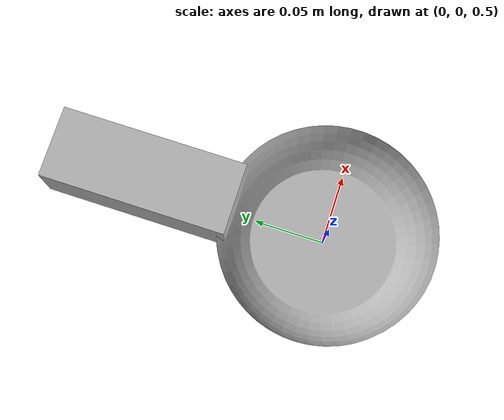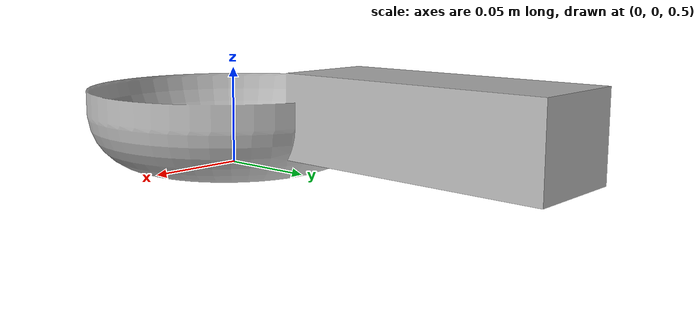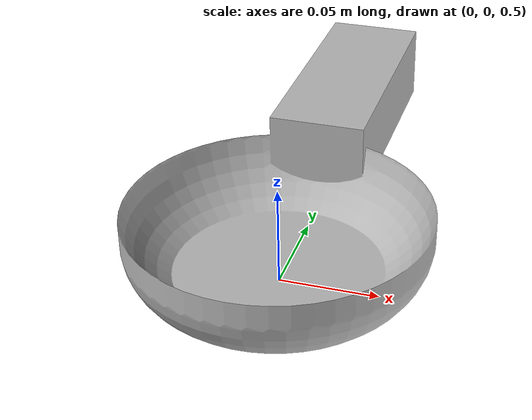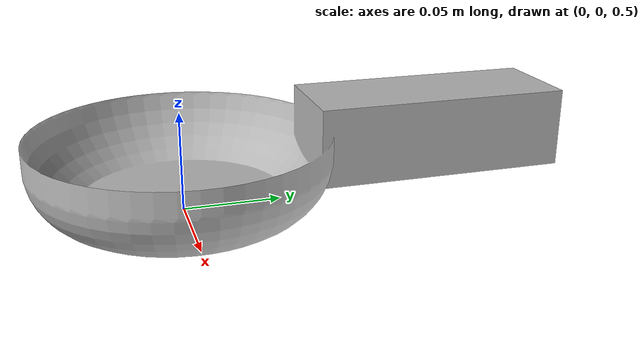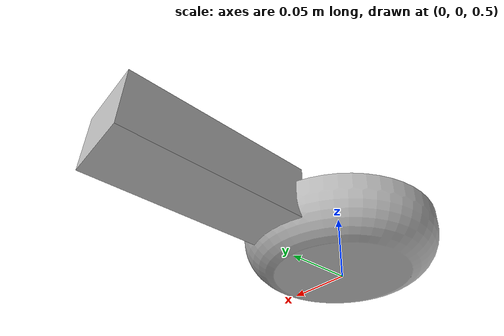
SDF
<?xml version='1.0'?>
<sdf version="1.6">
<model name="flypan">
  <pose>0 0 0.5 0 0 0</pose>
    <link name="link">
      <inertial>
        <mass>0.02</mass>
        <inertia>
          <ixx>0.002556195217</ixx>
          <ixy>0.0</ixy>
          <ixz>0.0</ixz>
          <iyy>0.000318732456</iyy>
          <iyz>0.0</iyz>
          <izz>0.002542478016</izz>
        </inertia>
      </inertial>
      <collision name="collision">
        <geometry>
          <mesh>
            <uri>model://flypan/flypan_50x40.dae</uri>
          </mesh>
        </geometry>
      </collision>
      <visual name="visual">
        <geometry>
          <mesh>
            <uri>model://flypan/flypan_50x40.dae</uri>
          </mesh>
        </geometry>
      </visual>
    </link>
  </model>
</sdf>
